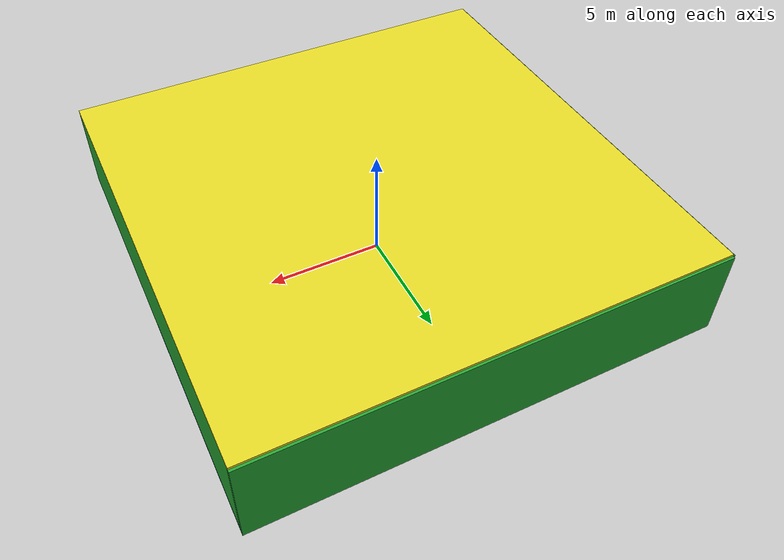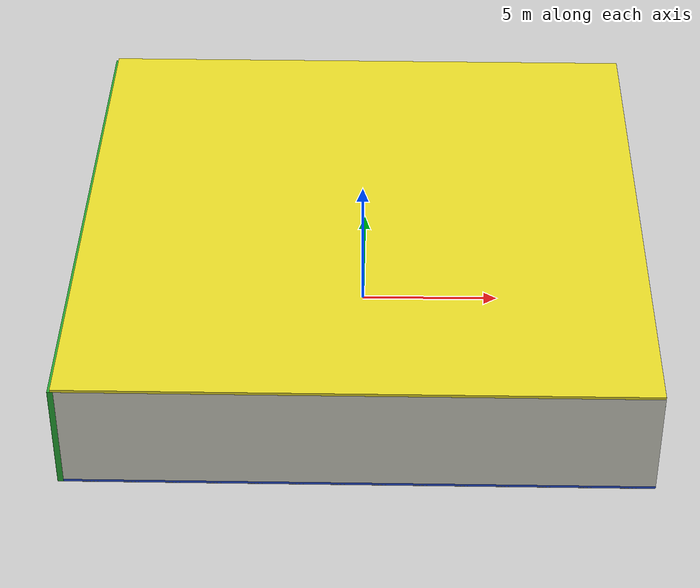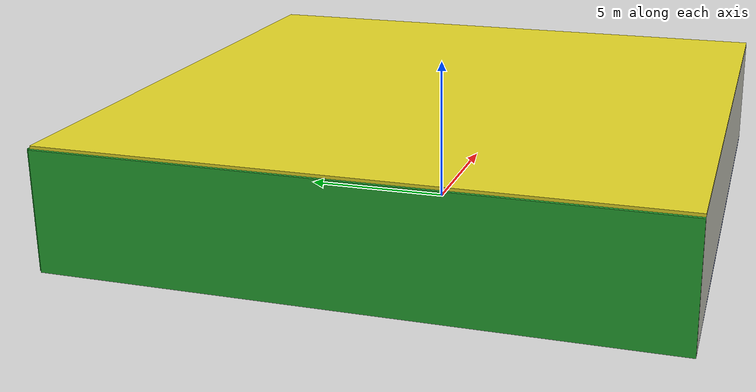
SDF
<sdf version="1.4">
 <world name="default">
  <physics type="ode">
   <max_step_size>0.001</max_step_size>
   <real_time_factor>1</real_time_factor>
   <real_time_update_rate>1000</real_time_update_rate>
   <gravity>0 0 -9.8</gravity>
  </physics>
  <scene><ambient>0.4 0.4 0.4 1</ambient><background>0.7 0.7 0.7 1</background><shadows>1</shadows></scene>
  <model name="Surrounding">
   <static>1</static>
   <link name="Ceiling">
    <collision name="Ceiling_Collision"><geometry><box><size>20 20 0.1</size></box></geometry></collision>
    <visual name="Ceiling_Visual">
     <geometry><box><size>20 20 0.1</size></box></geometry>
     <material>
      <script><uri>file://media/materials/scripts/gazebo.material</uri><name>Gazebo/Yellow</name></script>
     </material>
    </visual>
    <pose>0 0 4.05 0 0 0</pose>
   </link>
   <link name="Wall_South">
    <collision name="Wall_South_Collision">
     <geometry><box><size>20 0 4</size></box></geometry>
     <pose>0 0 2 0 -0 0</pose>
    </collision>
    <visual name="Wall_South_Visual">
     <pose>0 0 2 0 -0 0</pose>
     <geometry><box><size>20 0 4</size></box></geometry>
     <material>
      <script><uri>file://media/materials/scripts/gazebo.material</uri><name>Gazebo/PaintedWall</name></script>
     </material>
    </visual>
    <velocity_decay><linear>0</linear><angular>0</angular></velocity_decay>
    <pose>0 -10 0 0 -0 0</pose>
   </link>
   <link name="Wall_East">
    <collision name="Wall_21_Collision">
     <geometry><box><size>20 0 4</size></box></geometry>
     <pose>0 0 2 0 -0 0</pose>
    </collision>
    <visual name="Wall_21_Visual">
     <pose>0 0 2 0 -0 0</pose>
     <geometry><box><size>20 0 4</size></box></geometry>
     <material>
      <script><uri>file://media/materials/scripts/gazebo.material</uri><name>Gazebo/Green</name></script>
     </material>
    </visual>
    <velocity_decay><linear>0</linear><angular>0</angular></velocity_decay>
    <pose>10 0 0 0 -0 1.5708</pose>
   </link>
   <link name="Wall_North">
    <collision name="Wall_22_Collision">
     <geometry><box><size>20 0.2 4</size></box></geometry>
     <pose>0 0 2 0 -0 0</pose>
    </collision>
    <visual name="Wall_22_Visual">
     <pose>0 0 2 0 -0 0</pose>
     <geometry><box><size>20 0.2 4</size></box></geometry>
     <material>
      <script><uri>file://media/materials/scripts/gazebo.material</uri><name>Gazebo/Green</name></script>
     </material>
    </visual>
    <velocity_decay><linear>0</linear><angular>0</angular></velocity_decay>
    <pose>0 10 0 0 -0 0</pose>
   </link>
   <link name="Wall_West">
    <collision name="Wall_23_Collision">
     <geometry><box><size>20 0.2 4</size></box></geometry>
     <pose>0 0 2 0 -0 0</pose>
    </collision>
    <visual name="Wall_23_Visual">
     <pose>0 0 2 0 -0 0</pose>
     <geometry><box><size>20 0.2 4</size></box></geometry>
     <material>
      <script><uri>file://media/materials/scripts/gazebo.material</uri><name>Gazebo/GreenGlow</name></script>
     </material>
    </visual>
    <velocity_decay><linear>0</linear><angular>0</angular></velocity_decay>
    <pose>-10 0 0 0 0 -1.5708</pose>
   </link>
   <link name="Ground_link">
    <collision name="collision">
     <pose>0 0 .05 0 -0 0</pose>
     <geometry><box><size>20 20 0.1</size></box></geometry>
    </collision>
    <visual name="visual">
     <pose>0 0 .05 0 -0 0</pose>
     <geometry><box><size>20 20 0.1</size></box></geometry>
     <material>
      <script><uri>file://media/materials/scripts/gazebo.material</uri><name>Gazebo/BlueGlow</name></script>
     </material>
    </visual>
   </link>
   <static>1</static>
  </model>
  <spherical_coordinates>
   <surface_model>EARTH_WGS84</surface_model>
   <latitude_deg>0</latitude_deg>
   <longitude_deg>0</longitude_deg>
   <elevation>0</elevation>
   <heading_deg>0</heading_deg>
  </spherical_coordinates>
  <light name="lightball_0" type="diffuse">
   <diffuse>0.8 0.8 0.8 1</diffuse>
   <specular>0.2 0.2 0.2 1</specular>
   <attenuation>
    <range>100</range>
    <constant>0.7</constant>
    <linear>0.01</linear>
    <quadratic>0.001</quadratic>
   </attenuation>
   <direction>-0.5 0.1 -0.9</direction>
   <pose>-7.97628499118 9.94112149687 1.70564855282 0 0 0</pose>
  </light>
  <light name="lightball_1" type="diffuse">
   <diffuse>0.8 0.8 0.8 1</diffuse>
   <specular>0.2 0.2 0.2 1</specular>
   <attenuation>
    <range>100</range>
    <constant>0.7</constant>
    <linear>0.01</linear>
    <quadratic>0.001</quadratic>
   </attenuation>
   <direction>-0.5 0.1 -0.9</direction>
   <pose>7.48220867354 3.79096849175 3.82447921438 0 0 0</pose>
  </light>
  <light name="lightball_2" type="diffuse">
   <diffuse>0.8 0.8 0.8 1</diffuse>
   <specular>0.2 0.2 0.2 1</specular>
   <attenuation>
    <range>100</range>
    <constant>0.7</constant>
    <linear>0.01</linear>
    <quadratic>0.001</quadratic>
   </attenuation>
   <direction>-0.5 0.1 -0.9</direction>
   <pose>-1.18082317174 -5.50737229449 3.0521872062 0 0 0</pose>
  </light>
  <light name="lightball_3" type="diffuse">
   <diffuse>0.8 0.8 0.8 1</diffuse>
   <specular>0.2 0.2 0.2 1</specular>
   <attenuation>
    <range>100</range>
    <constant>0.7</constant>
    <linear>0.01</linear>
    <quadratic>0.001</quadratic>
   </attenuation>
   <direction>-0.5 0.1 -0.9</direction>
   <pose>-6.83759407538 6.43122939961 0.682780989679 0 0 0</pose>
  </light>
  <light name="lightball_4" type="diffuse">
   <diffuse>0.8 0.8 0.8 1</diffuse>
   <specular>0.2 0.2 0.2 1</specular>
   <attenuation>
    <range>100</range>
    <constant>0.7</constant>
    <linear>0.01</linear>
    <quadratic>0.001</quadratic>
   </attenuation>
   <direction>-0.5 0.1 -0.9</direction>
   <pose>6.04964734119 6.3344716526 1.47920358124 0 0 0</pose>
  </light>
  <light name="lightball_5" type="diffuse">
   <diffuse>0.8 0.8 0.8 1</diffuse>
   <specular>0.2 0.2 0.2 1</specular>
   <attenuation>
    <range>100</range>
    <constant>0.7</constant>
    <linear>0.01</linear>
    <quadratic>0.001</quadratic>
   </attenuation>
   <direction>-0.5 0.1 -0.9</direction>
   <pose>3.63905561819 -7.44088977702 1.4657795074 0 0 0</pose>
  </light>
  <include>
   <uri>model://robocup_3Dsim_goal</uri>
   <pose>-1.3126136192 1.82972636041 0 0 0 3.0243470116</pose>
  </include>
  <include>
   <uri>model://robocup_3Dsim_goal</uri>
   <pose>-0.781927206941 7.81461545756 0 0 0 0.762798610694</pose>
  </include>
  <include>
   <uri>model://textured_shapes</uri>
   <pose>8.22989845809 -2.10309550188 0 0 0 0.313681150353</pose>
  </include>
 </world>
</sdf>

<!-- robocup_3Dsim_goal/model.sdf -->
<sdf version="1.5">
  <model name="robocup_3d_goal">
    <static>true</static>
    <link name="left_post">
      <pose>0 1.05 0.45 0 0 0</pose>
      <collision name="collision">
        <geometry>
          <cylinder>
            <radius>0.05</radius>
            <length>0.9</length>
          </cylinder>
        </geometry>
      </collision>
      <visual name="visual">
        <geometry>
          <cylinder>
            <radius>0.05</radius>
            <length>0.9</length>
          </cylinder>
        </geometry>
        <material>
          <script>
            <uri>file://media/materials/scripts/gazebo.material</uri>
            <name>Gazebo/ZincYellow</name>
          </script>
        </material>
      </visual>
    </link>
    <link name="left_support_horiz_lower">
      <pose>0.30 1.05 0.01 0 0 0</pose>
      <collision name="collision">
        <geometry>
          <box>
            <size>0.50 0.02 0.02</size>
          </box>
        </geometry>
      </collision>
      <visual name="visual">
        <geometry>
          <box>
            <size>0.50 0.02 0.02</size>
          </box>
        </geometry>
        <material>
          <script>
            <uri>file://media/materials/scripts/gazebo.material</uri>
            <name>Gazebo/White</name>
          </script>
        </material>
      </visual>
    </link>
    <link name="left_support_horiz_upper">
      <pose>0.30 1.05 0.79 0 0 0</pose>
      <collision name="collision">
        <geometry>
          <box>
            <size>0.50 0.02 0.02</size>
          </box>
        </geometry>
      </collision>
      <visual name="visual">
        <geometry>
          <box>
            <size>0.50 0.02 0.02</size>
          </box>
        </geometry>
        <material>
          <script>
            <uri>file://media/materials/scripts/gazebo.material</uri>
            <name>Gazebo/White</name>
          </script>
        </material>
      </visual>
    </link>
    <link name="left_support_vertical">
      <pose>0.56 1.05 0.4 0 1.5708 0</pose>
      <collision name="collision">
        <geometry>
          <box>
            <size>0.80 0.02 0.02</size>
          </box>
        </geometry>
      </collision>
      <visual name="visual">
        <geometry>
          <box>
            <size>0.80 0.02 0.02</size>
          </box>
        </geometry>
        <material>
          <script>
            <uri>file://media/materials/scripts/gazebo.material</uri>
            <name>Gazebo/White</name>
          </script>
        </material>
      </visual>
    </link>
    <link name="right_support_horiz_lower">
      <pose>0.30 -1.05 0.01 0 0 0</pose>
      <collision name="collision">
        <geometry>
          <box>
            <size>0.50 0.02 0.02</size>
          </box>
        </geometry>
      </collision>
      <visual name="visual">
        <geometry>
          <box>
            <size>0.50 0.02 0.02</size>
          </box>
        </geometry>
        <material>
          <script>
            <uri>file://media/materials/scripts/gazebo.material</uri>
            <name>Gazebo/White</name>
          </script>
        </material>
      </visual>
    </link>
    <link name="right_support_horiz_upper">
      <pose>0.30 -1.05 0.79 0 0 0</pose>
      <collision name="collision">
        <geometry>
          <box>
            <size>0.50 0.02 0.02</size>
          </box>
        </geometry>
      </collision>
      <visual name="visual">
        <geometry>
          <box>
            <size>0.50 0.02 0.02</size>
          </box>
        </geometry>
        <material>
          <script>
            <uri>file://media/materials/scripts/gazebo.material</uri>
            <name>Gazebo/White</name>
          </script>
        </material>
      </visual>
    </link>
    <link name="right_support_vertical">
      <pose>0.56 -1.05 0.4 0 1.5708 0</pose>
      <collision name="collision">
        <geometry>
          <box>
            <size>0.80 0.02 0.02</size>
          </box>
        </geometry>
      </collision>
      <visual name="visual">
        <geometry>
          <box>
            <size>0.80 0.02 0.02</size>
          </box>
        </geometry>
        <material>
          <script>
            <uri>file://media/materials/scripts/gazebo.material</uri>
            <name>Gazebo/White</name>
          </script>
        </material>
      </visual>
    </link>
    <link name="center_support_horiz_lower">
      <pose>0.56 0 0.01 0 1.5708 0</pose>
      <collision name="collision">
        <geometry>
          <box>
            <size>0.02 2.08 0.02</size>
          </box>
        </geometry>
      </collision>
      <visual name="visual">
        <geometry>
          <box>
            <size>0.02 2.08 0.02</size>
          </box>
        </geometry>
        <material>
          <script>
            <uri>file://media/materials/scripts/gazebo.material</uri>
            <name>Gazebo/White</name>
          </script>
        </material>
      </visual>
    </link>
    <link name="center_support_horiz_upper">
      <pose>0.56 0 0.79 0 1.5708 0</pose>
      <collision name="collision">
        <geometry>
          <box>
            <size>0.02 2.08 0.02</size>
          </box>
        </geometry>
      </collision>
      <visual name="visual">
        <geometry>
          <box>
            <size>0.02 2.08 0.02</size>
          </box>
        </geometry>
        <material>
          <script>
            <uri>file://media/materials/scripts/gazebo.material</uri>
            <name>Gazebo/White</name>
          </script>
        </material>
      </visual>
    </link>
    <link name="right_post">
      <pose>0 -1.05 0.45 0 0 0</pose>
      <collision name="collision">
        <geometry>
          <cylinder>
            <radius>0.05</radius>
            <length>0.9</length>
          </cylinder>
        </geometry>
      </collision>
      <visual name="visual">
        <geometry>
          <cylinder>
            <radius>0.05</radius>
            <length>0.9</length>
          </cylinder>
        </geometry>
        <material>
          <script>
            <uri>file://media/materials/scripts/gazebo.material</uri>
            <name>Gazebo/ZincYellow</name>
          </script>
        </material>
      </visual>
    </link>
    <link name="crossbar">
      <pose>0 0 0.85 1.57 1.57 0</pose>
      <collision name="collision">
        <geometry>
          <cylinder>
            <radius>0.05</radius>
            <length>2.0</length>
          </cylinder>
        </geometry>
      </collision>
      <visual name="visual">
        <geometry>
          <cylinder>
            <radius>0.05</radius>
            <length>2.0</length>
          </cylinder>
        </geometry>
        <material>
          <script>
            <uri>file://media/materials/scripts/gazebo.material</uri>
            <name>Gazebo/ZincYellow</name>
          </script>
        </material>
      </visual>
    </link>
    <link name="center_net">
      <pose>0.56 0 0.40 0 0 0</pose>
      <collision name="collision">
        <geometry>
          <box>
            <size>0.01 2.1 0.80</size>
          </box>
        </geometry>
      </collision>
      <visual name="visual">
        <geometry>
          <box>
            <size>0.01 2.1 0.80</size>
          </box>
        </geometry>
        <material>
          <script>
            <uri>model://../model_source/models/robocup09_spl_field/materials/scripts/</uri>
            <uri>model://../model_source/models/robocup09_spl_field/materials/textures/</uri>
            <name>RoboCup/Net</name>
          </script>
        </material>
      </visual>
    </link>
    <link name="left_net">
      <pose>0.30 1.05 0.40 0 0 0</pose>
      <collision name="collision">
        <geometry>
          <box>
            <size>0.50 0.01 0.76</size>
          </box>
        </geometry>
      </collision>
      <visual name="visual">
        <geometry>
          <box>
            <size>0.50 0.01 0.76</size>
          </box>
        </geometry>
        <material>
          <script>
            <uri>model://../model_source/models/robocup09_spl_field/materials/scripts/</uri>
            <uri>model://../model_source/models/robocup09_spl_field/materials/textures/</uri>
            <name>RoboCup/Net</name>
          </script>
        </material>
      </visual>
    </link>
    <link name="right_net">
      <pose>0.30 -1.05 0.40 0 0 0</pose>
      <collision name="collision">
        <geometry>
          <box>
            <size>0.50 0.01 0.76</size>
          </box>
        </geometry>
      </collision>
      <visual name="visual">
        <geometry>
          <box>
            <size>0.50 0.01 0.76</size>
          </box>
        </geometry>
        <material>
          <script>
            <uri>model://../model_source/models/robocup09_spl_field/materials/scripts/</uri>
            <uri>model://../model_source/models/robocup09_spl_field/materials/textures/</uri>
            <name>RoboCup/Net</name>
          </script>
        </material>
      </visual>
    </link>
  </model>
</sdf>

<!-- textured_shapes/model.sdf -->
<sdf version="1.6">
  <model name="textured_shapes">
    <pose>0 0 0.5 0 0 0</pose>
    <link name="box">
      <pose>0 -1.5 0 0 0 0</pose>
      <collision name="collision">
        <geometry>
          <box>
            <size>1 1 1</size>
          </box>
        </geometry>
      </collision>
      <visual name="visual">
        <geometry>
          <box>
            <size>1 1 1</size>
          </box>
        </geometry>
        <material>
          <script>
            <uri>model://../model_source/models/textured_shapes/materials/scripts</uri>
            <uri>model://../model_source/models/textured_shapes/materials/textures</uri>
            <name>TexturedShape/Squares</name>
          </script>
        </material>
      </visual>
    </link>
    <link name="sphere">
      <collision name="collision">
        <geometry>
          <sphere>
            <radius>0.5</radius>
          </sphere>
        </geometry>
      </collision>
      <visual name="visual">
        <geometry>
          <sphere>
            <radius>0.5</radius>
          </sphere>
        </geometry>
        <material>
          <script>
            <uri>model://../model_source/models/textured_shapes/materials/scripts</uri>
            <uri>model://../model_source/models/textured_shapes/materials/textures</uri>
            <name>TexturedShape/Squares</name>
          </script>
        </material>
      </visual>
    </link>
    <link name="cylinder">
      <pose>0 1.5 0 0 0 0</pose>
      <collision name="collision">
        <geometry>
          <cylinder>
            <radius>0.5</radius>
            <length>1</length>
          </cylinder>
        </geometry>
      </collision>
      <visual name="visual">
        <geometry>
          <cylinder>
            <radius>0.5</radius>
            <length>1</length>
          </cylinder>
        </geometry>
        <material>
          <script>
            <uri>model://../model_source/models/textured_shapes/materials/scripts</uri>
            <uri>model://../model_source/models/textured_shapes/materials/textures</uri>
            <name>TexturedShape/Squares</name>
          </script>
        </material>
      </visual>
    </link>
  </model>
</sdf>
